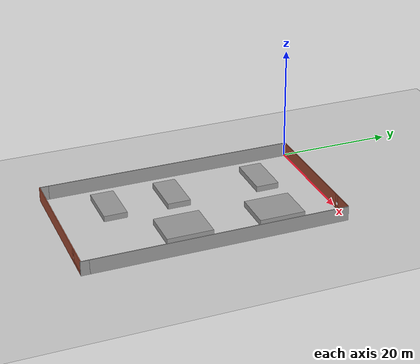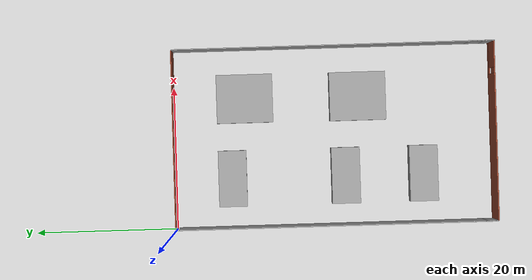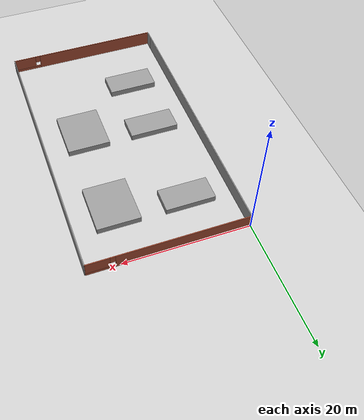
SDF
<sdf version="1.7">
 <world name="default">
  <light name="sun" type="directional">
   <pose>0 0 10 0 -0 0</pose>
   <diffuse>0.8 0.8 0.8 1</diffuse>
   <specular>0.2 0.2 0.2 1</specular>
   <attenuation>
    <range>1000</range>
    <constant>0.9</constant>
    <linear>0.01</linear>
    <quadratic>0.001</quadratic>
   </attenuation>
   <direction>-0.5 0.1 -0.9</direction>
   <spot><inner_angle>0</inner_angle><outer_angle>0</outer_angle><falloff>0</falloff></spot>
  </light>
  <model name="ground_plane">
   <static>1</static>
   <link name="link">
    <collision name="collision">
     <geometry><plane><normal>0 0 1</normal><size>100 100</size></plane></geometry>
     <surface>
      <contact><collide_bitmask>65535</collide_bitmask></contact>
      <friction><ode><mu>100</mu><mu2>50</mu2></ode></friction>
     </surface>
    </collision>
    <visual name="visual">
     <cast_shadows>0</cast_shadows>
     <geometry><plane><normal>0 0 1</normal><size>100 100</size></plane></geometry>
     <material>
      <script><uri>file://media/materials/scripts/gazebo.material</uri><name>Gazebo/Grey</name></script>
     </material>
    </visual>
   </link>
  </model>
  <gravity>0 0 -9.8</gravity>
  <magnetic_field>6e-06 2.3e-05 -4.2e-05</magnetic_field>
  <atmosphere type="adiabatic"/>
  <physics type="ode">
   <max_step_size>0.001</max_step_size>
   <real_time_factor>1</real_time_factor>
   <real_time_update_rate>1000</real_time_update_rate>
  </physics>
  <scene><ambient>0.4 0.4 0.4 1</ambient><background>0.7 0.7 0.7 1</background><shadows>1</shadows></scene>
  <spherical_coordinates>
   <surface_model>EARTH_WGS84</surface_model>
   <latitude_deg>0</latitude_deg>
   <longitude_deg>0</longitude_deg>
   <elevation>0</elevation>
   <heading_deg>0</heading_deg>
  </spherical_coordinates>
  <model name="Warehouse_PRM">
   <pose>12.6179 0.087418 0 0 -0 0.159088</pose>
   <link name="Wall_0">
    <pose>-0 -0.046739 0 0 -0 -0.1599</pose>
    <visual name="Wall_0_Visual_0">
     <pose>-2.21857 0 1.25 0 -0 0</pose>
     <geometry><box><size>20.5629 0.15 2.5</size></box></geometry>
     <material>
      <script><uri>file://media/materials/scripts/gazebo.material</uri><name>Gazebo/Bricks</name></script>
      <ambient>1 0.764706 0.305882 1</ambient>
     </material>
     <meta><layer>0</layer></meta>
    </visual>
    <collision name="Wall_0_Collision_0">
     <geometry><box><size>20.5629 0.15 2.5</size></box></geometry>
     <pose>-2.21857 0 1.25 0 -0 0</pose>
    </collision>
    <visual name="Wall_0_Visual_1">
     <pose>10.2814 0 0.25 0 -0 0</pose>
     <geometry><box><size>4.43714 0.15 0.5</size></box></geometry>
     <material>
      <script><uri>file://media/materials/scripts/gazebo.material</uri><name>Gazebo/Bricks</name></script>
      <ambient>1 0.764706 0.305882 1</ambient>
     </material>
     <meta><layer>0</layer></meta>
    </visual>
    <collision name="Wall_0_Collision_1">
     <geometry><box><size>4.43714 0.15 0.5</size></box></geometry>
     <pose>10.2814 0 0.25 0 -0 0</pose>
    </collision>
    <visual name="Wall_0_Visual_2">
     <pose>10.6814 0 1.5 0 -0 0</pose>
     <geometry><box><size>3.63714 0.15 2</size></box></geometry>
     <material>
      <script><uri>file://media/materials/scripts/gazebo.material</uri><name>Gazebo/Bricks</name></script>
      <ambient>1 0.764706 0.305882 1</ambient>
     </material>
     <meta><layer>0</layer></meta>
    </visual>
    <collision name="Wall_0_Collision_2">
     <geometry><box><size>3.63714 0.15 2</size></box></geometry>
     <pose>10.6814 0 1.5 0 -0 0</pose>
    </collision>
    <visual name="Wall_0_Visual_3">
     <pose>8.46286 0 1.9 0 -0 0</pose>
     <geometry><box><size>0.8 0.15 1.2</size></box></geometry>
     <material>
      <script><uri>file://media/materials/scripts/gazebo.material</uri><name>Gazebo/Bricks</name></script>
      <ambient>1 0.764706 0.305882 1</ambient>
     </material>
     <meta><layer>0</layer></meta>
    </visual>
    <collision name="Wall_0_Collision_3">
     <geometry><box><size>0.8 0.15 1.2</size></box></geometry>
     <pose>8.46286 0 1.9 0 -0 0</pose>
    </collision>
   </link>
   <static>1</static>
  </model>
  <model name="Warehouse_PRM_clone">
   <pose>12.6139 -44.8055 0 0 -0 0.159088</pose>
   <link name="Wall_0">
    <pose>-0 -0.046739 0 0 -0 -0.1599</pose>
    <visual name="Wall_0_Visual_0">
     <pose>-2.21857 0 1.25 0 -0 0</pose>
     <geometry><box><size>20.5629 0.15 2.5</size></box></geometry>
     <material>
      <script><uri>file://media/materials/scripts/gazebo.material</uri><name>Gazebo/Bricks</name></script>
      <ambient>1 0.764706 0.305882 1</ambient>
     </material>
     <meta><layer>0</layer></meta>
    </visual>
    <collision name="Wall_0_Collision_0">
     <geometry><box><size>20.5629 0.15 2.5</size></box></geometry>
     <pose>-2.21857 0 1.25 0 -0 0</pose>
    </collision>
    <visual name="Wall_0_Visual_1">
     <pose>10.2814 0 0.25 0 -0 0</pose>
     <geometry><box><size>4.43714 0.15 0.5</size></box></geometry>
     <material>
      <script><uri>file://media/materials/scripts/gazebo.material</uri><name>Gazebo/Bricks</name></script>
      <ambient>1 0.764706 0.305882 1</ambient>
     </material>
     <meta><layer>0</layer></meta>
    </visual>
    <collision name="Wall_0_Collision_1">
     <geometry><box><size>4.43714 0.15 0.5</size></box></geometry>
     <pose>10.2814 0 0.25 0 -0 0</pose>
    </collision>
    <visual name="Wall_0_Visual_2">
     <pose>10.6814 0 1.5 0 -0 0</pose>
     <geometry><box><size>3.63714 0.15 2</size></box></geometry>
     <material>
      <script><uri>file://media/materials/scripts/gazebo.material</uri><name>Gazebo/Bricks</name></script>
      <ambient>1 0.764706 0.305882 1</ambient>
     </material>
     <meta><layer>0</layer></meta>
    </visual>
    <collision name="Wall_0_Collision_2">
     <geometry><box><size>3.63714 0.15 2</size></box></geometry>
     <pose>10.6814 0 1.5 0 -0 0</pose>
    </collision>
    <visual name="Wall_0_Visual_3">
     <pose>8.46286 0 1.9 0 -0 0</pose>
     <geometry><box><size>0.8 0.15 1.2</size></box></geometry>
     <material>
      <script><uri>file://media/materials/scripts/gazebo.material</uri><name>Gazebo/Bricks</name></script>
      <ambient>1 0.764706 0.305882 1</ambient>
     </material>
     <meta><layer>0</layer></meta>
    </visual>
    <collision name="Wall_0_Collision_3">
     <geometry><box><size>0.8 0.15 1.2</size></box></geometry>
     <pose>8.46286 0 1.9 0 -0 0</pose>
    </collision>
   </link>
   <static>1</static>
  </model>
  <model name="PRM_wall2">
   <pose>10.1927 -22.3446 0 0 -0 0</pose>
   <link name="Wall_7">
    <collision name="Wall_7_Collision">
     <geometry><box><size>45 0.15 2.5</size></box></geometry>
     <pose>0 0 1.25 0 -0 0</pose>
    </collision>
    <visual name="Wall_7_Visual">
     <pose>0 0 1.25 0 -0 0</pose>
     <geometry><box><size>45 0.15 2.5</size></box></geometry>
     <material>
      <script><uri>file://media/materials/scripts/gazebo.material</uri><name>Gazebo/Grey</name></script>
      <ambient>1 1 1 1</ambient>
     </material>
     <meta><layer>0</layer></meta>
    </visual>
    <pose>-10.0674 -0 0 0 -0 -1.5708</pose>
   </link>
   <link name="Wall_8">
    <collision name="Wall_8_Collision">
     <geometry><box><size>3.55 0.15 2.5</size></box></geometry>
     <pose>0 0 1.25 0 -0 0</pose>
    </collision>
    <visual name="Wall_8_Visual">
     <pose>0 0 1.25 0 -0 0</pose>
     <geometry><box><size>3.55 0.15 2.5</size></box></geometry>
     <material>
      <script><uri>file://media/materials/scripts/gazebo.material</uri><name>Gazebo/Grey</name></script>
      <ambient>1 1 1 1</ambient>
     </material>
     <meta><layer>0</layer></meta>
    </visual>
    <pose>-10.0675 -20.7249 0 0 -0 1.57088</pose>
   </link>
   <static>1</static>
  </model>
  <model name="PRM_wall2_clone">
   <pose>35.2526 -22.4695 0 0 -0 0</pose>
   <link name="Wall_7">
    <collision name="Wall_7_Collision">
     <geometry><box><size>45 0.15 2.5</size></box></geometry>
     <pose>0 0 1.25 0 -0 0</pose>
    </collision>
    <visual name="Wall_7_Visual">
     <pose>0 0 1.25 0 -0 0</pose>
     <geometry><box><size>45 0.15 2.5</size></box></geometry>
     <material>
      <script><uri>file://media/materials/scripts/gazebo.material</uri><name>Gazebo/Grey</name></script>
      <ambient>1 1 1 1</ambient>
     </material>
     <meta><layer>0</layer></meta>
    </visual>
    <pose>-10.0674 -0 0 0 -0 -1.5708</pose>
   </link>
   <link name="Wall_8">
    <collision name="Wall_8_Collision">
     <geometry><box><size>3.55 0.15 2.5</size></box></geometry>
     <pose>0 0 1.25 0 -0 0</pose>
    </collision>
    <visual name="Wall_8_Visual">
     <pose>0 0 1.25 0 -0 0</pose>
     <geometry><box><size>3.55 0.15 2.5</size></box></geometry>
     <material>
      <script><uri>file://media/materials/scripts/gazebo.material</uri><name>Gazebo/Grey</name></script>
      <ambient>1 1 1 1</ambient>
     </material>
     <meta><layer>0</layer></meta>
    </visual>
    <pose>-10.0675 -20.7249 0 0 -0 1.57088</pose>
   </link>
   <static>1</static>
  </model>
  <model name="unit_box">
   <pose>6.97306 -8.02187 0.5 0 -0 0</pose>
   <link name="link">
    <inertial>
     <mass>1</mass>
     <inertia>
      <ixx>0.166667</ixx>
      <ixy>0</ixy>
      <ixz>0</ixz>
      <iyy>0.166667</iyy>
      <iyz>0</iyz>
      <izz>0.166667</izz>
     </inertia>
    </inertial>
    <collision name="collision"><geometry><box><size>7.91184 3.98624 1</size></box></geometry></collision>
    <visual name="visual">
     <geometry><box><size>7.91184 3.98624 1</size></box></geometry>
     <material>
      <script><name>Gazebo/Grey</name><uri>file://media/materials/scripts/gazebo.material</uri></script>
     </material>
    </visual>
   </link>
  </model>
  <model name="unit_box_clone">
   <pose>6.97306 -24 0.5 0 -0 0</pose>
   <link name="link">
    <inertial>
     <mass>1</mass>
     <inertia>
      <ixx>0.166667</ixx>
      <ixy>0</ixy>
      <ixz>0</ixz>
      <iyy>0.166667</iyy>
      <iyz>0</iyz>
      <izz>0.166667</izz>
     </inertia>
    </inertial>
    <collision name="collision"><geometry><box><size>7.91184 3.98624 1</size></box></geometry></collision>
    <visual name="visual">
     <geometry><box><size>7.91184 3.98624 1</size></box></geometry>
     <material>
      <script><name>Gazebo/Grey</name><uri>file://media/materials/scripts/gazebo.material</uri></script>
     </material>
    </visual>
   </link>
  </model>
  <model name="unit_box_clone_clone">
   <pose>6.97306 -35 0.5 0 -0 0</pose>
   <link name="link">
    <inertial>
     <mass>1</mass>
     <inertia>
      <ixx>0.166667</ixx>
      <ixy>0</ixy>
      <ixz>0</ixz>
      <iyy>0.166667</iyy>
      <iyz>0</iyz>
      <izz>0.166667</izz>
     </inertia>
    </inertial>
    <collision name="collision"><geometry><box><size>7.91184 3.98624 1</size></box></geometry></collision>
    <visual name="visual">
     <geometry><box><size>7.91184 3.98624 1</size></box></geometry>
     <material>
      <script><name>Gazebo/Grey</name><uri>file://media/materials/scripts/gazebo.material</uri></script>
     </material>
    </visual>
   </link>
  </model>
  <model name="unit_box_0">
   <pose>18.2118 -9.99468 0.5 0 -0 0</pose>
   <link name="link">
    <inertial>
     <mass>1</mass>
     <inertia>
      <ixx>0.166667</ixx>
      <ixy>0</ixy>
      <ixz>0</ixz>
      <iyy>0.166667</iyy>
      <iyz>0</iyz>
      <izz>0.166667</izz>
     </inertia>
    </inertial>
    <collision name="collision"><geometry><box><size>6.83991 7.90852 1</size></box></geometry></collision>
    <visual name="visual">
     <geometry><box><size>6.83991 7.90852 1</size></box></geometry>
     <material>
      <script><name>Gazebo/Grey</name><uri>file://media/materials/scripts/gazebo.material</uri></script>
     </material>
    </visual>
   </link>
  </model>
  <model name="unit_box_0_clone">
   <pose>18.1133 -25.942 0.5 0 -0 0</pose>
   <link name="link">
    <inertial>
     <mass>1</mass>
     <inertia>
      <ixx>0.166667</ixx>
      <ixy>0</ixy>
      <ixz>0</ixz>
      <iyy>0.166667</iyy>
      <iyz>0</iyz>
      <izz>0.166667</izz>
     </inertia>
    </inertial>
    <collision name="collision"><geometry><box><size>6.83991 7.90852 1</size></box></geometry></collision>
    <visual name="visual">
     <geometry><box><size>6.83991 7.90852 1</size></box></geometry>
     <material>
      <script><name>Gazebo/Grey</name><uri>file://media/materials/scripts/gazebo.material</uri></script>
     </material>
    </visual>
   </link>
  </model>
 </world>
</sdf>
